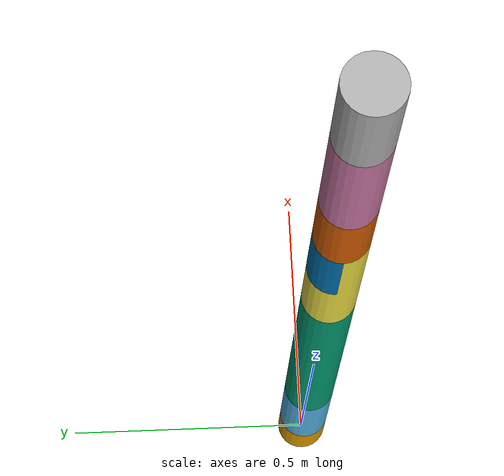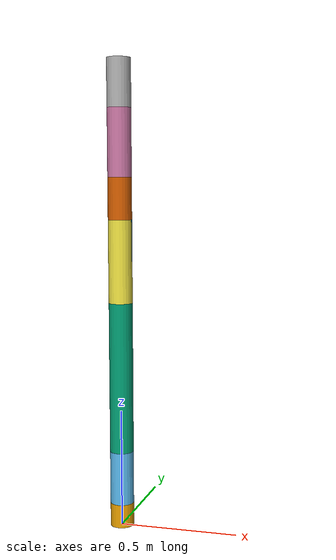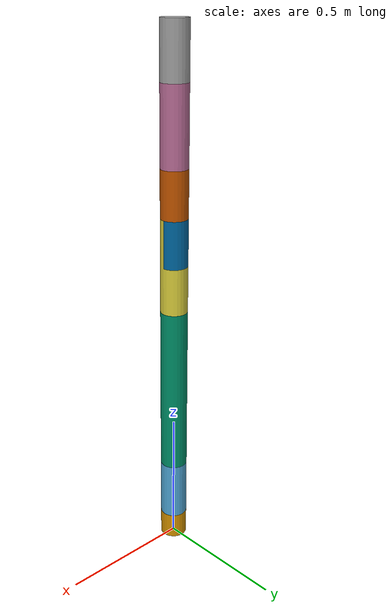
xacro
<?xml version="1.0"?>
<robot name="sia_robot" xmlns:xacro="http://ros.org/wiki/xacro">

  <!--define DH parameters-->
  <xacro:property name="sia_robot_d1" value="0.089159" />
  <xacro:property name="sia_robot_a2" value="-0.42500" />
  <xacro:property name="sia_robot_a3" value="-0.39225" />
  <xacro:property name="sia_robot_d4" value="0.10915" />
  <xacro:property name="sia_robot_d5" value="0.09465" />
  <xacro:property name="sia_robot_d6" value="0.0823" />

  <!--link lenght used in this model for relative coordinate of joint-->
  <!-- link lengths used in model -->
  <xacro:property name="base_link_height" value="0.1" />
  <xacro:property name="shoulder_height" value="0.22625" />
  <xacro:property name="upper_arm_length" value="0.64" />
  <xacro:property name="forearm_length" value="0.3494" />
  <xacro:property name="wrist_1_length" value="0.1747" />
  <xacro:property name="wrist_2_length" value="0.1747" />
  <xacro:property name="wrist_3_length" value="0.2834" />

  <xacro:property name="radius_of_cylinder" value="0.05" />

<!--world frame is the joint0 frame as default-->

  <link name="link1" >
    <visual>
      <origin xyz="0 0 ${base_link_height/2.0}" rpy="0 0 0"/>
      <geometry>
        <cylinder length="${base_link_height}" radius="${radius_of_cylinder}"/>
      </geometry>
    </visual>
  </link>

  <link name="link2" >
    <visual>
      <origin xyz="0 0 -${shoulder_height/2.0}" rpy="0 0 0"/>
      <geometry>
        <cylinder length="${shoulder_height}" radius="${radius_of_cylinder}"/>
      </geometry>
    </visual>
  </link>

  <link name="link3" >
    <visual>
      <origin xyz="${upper_arm_length/2.0} 0 0" rpy="${-pi/2.0} 0 ${-pi/2.0}"/>
      <geometry>
        <cylinder length="${upper_arm_length}" radius="${radius_of_cylinder}"/>
      </geometry>
    </visual>
  </link>

  <link name="link4" >
    <visual>
    <origin xyz="0 ${forearm_length/2.0} 0" rpy="${-pi/2.0} 0 0"/>
      <geometry>
        <cylinder length="${forearm_length}" radius="${radius_of_cylinder}"/>
      </geometry>
    </visual>
  </link>

  <link name="link5" >
    <visual>
      <origin xyz=" 0 0 ${ - wrist_1_length/2.0}" rpy="0 0 0"/>
      <geometry>
        <cylinder length="${wrist_1_length}" radius="${radius_of_cylinder}"/>
      </geometry>
    </visual>
  </link>

<link name="link6" >
    <visual>
      <origin xyz="0 ${wrist_2_length/2.0} 0" rpy="${-pi/2.0} 0 0"/>
      <geometry>
        <cylinder length="${wrist_2_length}" radius="${radius_of_cylinder}"/>
      </geometry>
    </visual>
  </link>

 <link name="link7" >
    <visual>
      <origin xyz="0 0 ${wrist_3_length/2.0}" rpy="0 0 0"/>
      <geometry>
        <cylinder length="${wrist_3_length}" radius="${radius_of_cylinder}"/>
      </geometry>
    </visual>
  </link>

  <joint name="joint1" type="revolute">
    <parent link="link1"/>
    <child link="link2"/>
    <origin xyz="0 0 ${base_link_height+shoulder_height}" rpy="0 0 0" />
    <axis xyz="0 0 1" />
    <limit lower="${-175.0/180.0 * pi}" upper="${175.0/180.0 * pi}" effort="150.0" velocity="3.15"/>
  </joint>

  <joint name="joint2" type="revolute">
    <parent link="link2"/>
    <child link="link3"/>
    <origin xyz="0 0 0" rpy="${pi/2.0} -${pi/2.0} 0" />
    <axis xyz="0 0 1" />
    <limit lower="${-pi/4.0}" upper="${pi/4.0}" effort="150.0" velocity="3.15"/>
  </joint>

  <joint name="joint3" type="revolute">
    <parent link="link3"/>
    <child link="link4"/>
    <origin xyz="${upper_arm_length} 0 0" rpy="0 0 -1.57" />
    <axis xyz="0 0 1" />
    <limit lower="${-75.0/180.0 * pi}" upper="${75.0/180.0 * pi}" effort="150.0" velocity="3.15"/>
  </joint>

    <joint name="joint4" type="revolute">
    <parent link="link4"/>
    <child link="link5"/>
    <origin xyz="0 ${forearm_length} 0" rpy="-1.57 0 0" />
    <axis xyz="0 0 1" />
    <limit lower="${-175.0/180.0 * pi}" upper="${175.0/180.0 * pi}" effort="28.0" velocity="3.2"/>
  </joint>

    <joint name="joint5" type="revolute">
    <parent link="link5"/>
    <child link="link6"/>
    <origin xyz="0 0 0" rpy="1.57 0 0" />
    <axis xyz="0 0 1" />
    <limit lower="${-75.0/180.0 * pi}" upper="${75.0/180.0 * pi}" effort="28.0" velocity="3.2"/>
  </joint>

  <joint name="joint6" type="revolute">
    <parent link="link6"/>
    <child link="link7"/>
    <origin xyz="0 ${wrist_2_length} 0" rpy="-1.57 0 0" />
    <axis xyz="0 0 1" />
    <limit lower="${-175.0/180.0 * pi}" upper="${175.0/180.0 * pi}" effort="28.0" velocity="3.2"/>
  </joint>

  <!--define eef link and joint7-->
  <xacro:property name="eef_length" value="0.2" />

  <link name="eef" >
    <visual>
      <origin xyz="0 0 -${eef_length/2.0}" rpy="0 0 0"/>
      <geometry>
        <cylinder length="${eef_length}" radius="${radius_of_cylinder}"/>
      </geometry>
    </visual>
  </link>

  <joint name="joint7" type="fixed">
    <parent link="link7"/>
    <child link="eef"/>
    <origin xyz="0 0 ${wrist_3_length + eef_length}" rpy="0 0 0" />
    <axis xyz="0 0 1" />
  </joint>

</robot>
